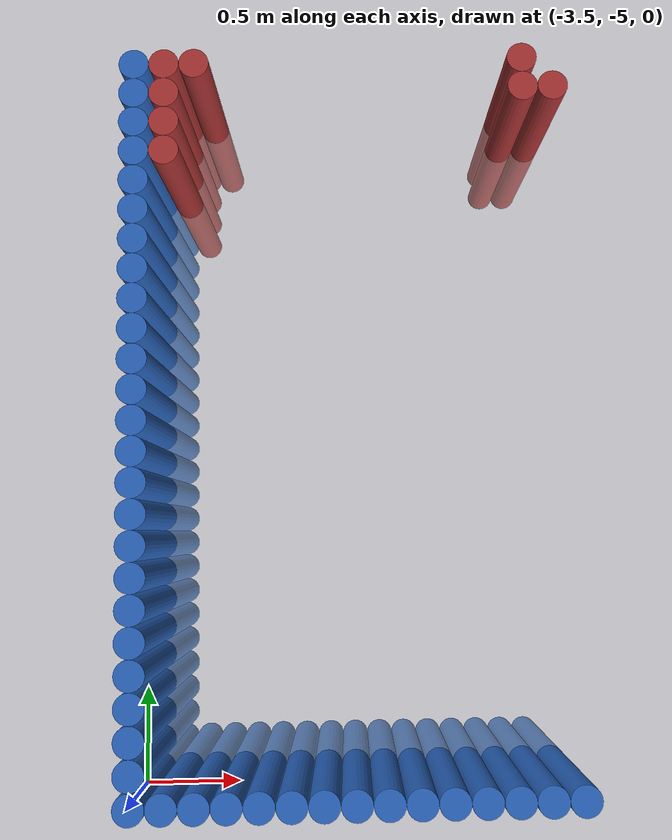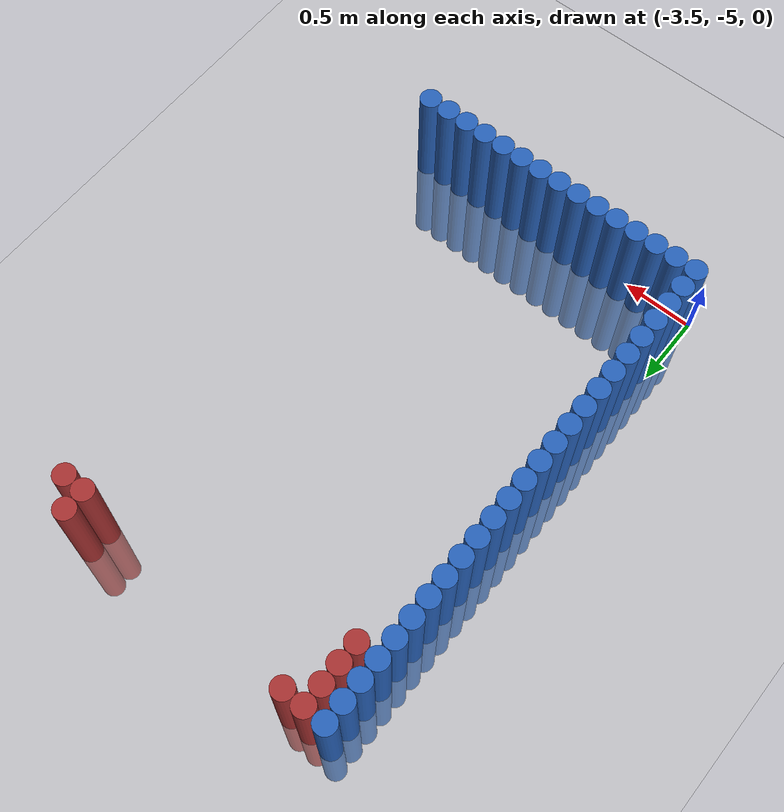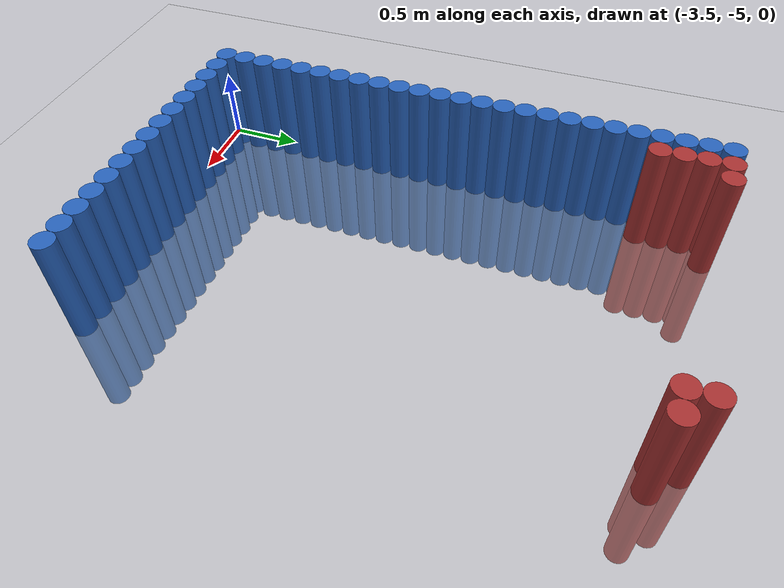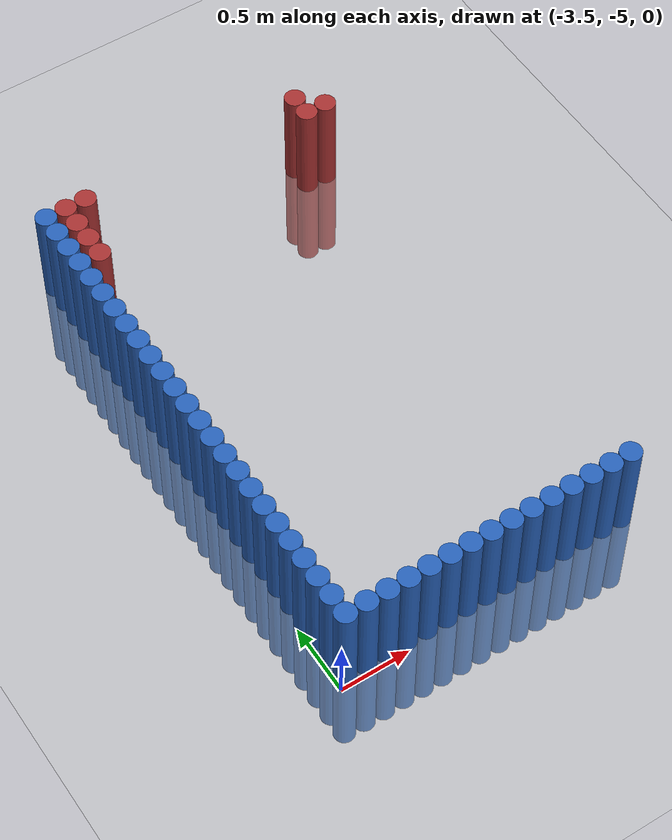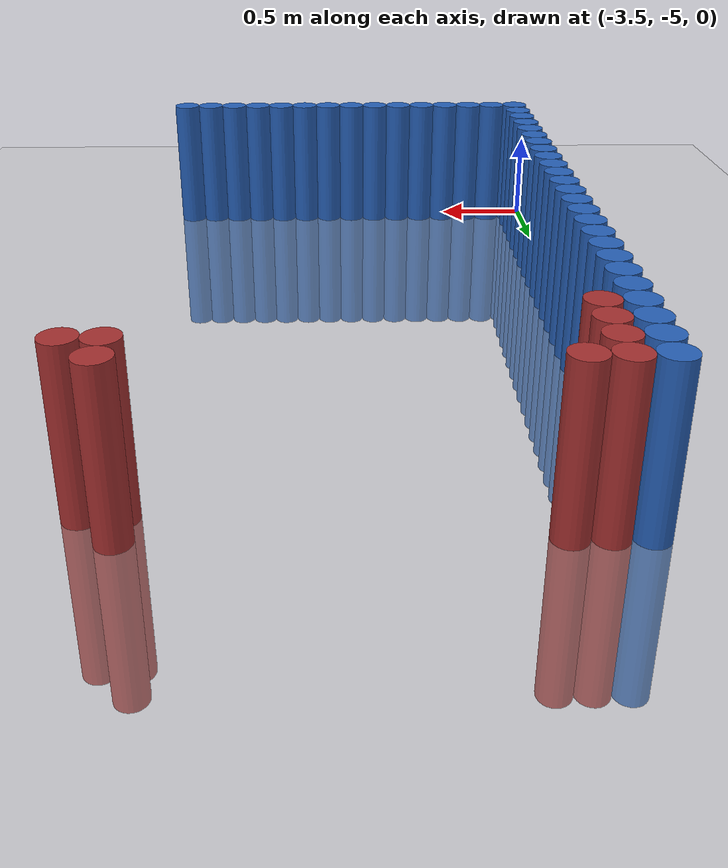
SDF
<sdf version="1.6">
 <world name="default">
  <model name="ground_plane">
   <static>1</static>
   <link name="link">
    <collision name="collision">
     <geometry><plane><normal>0 0 1</normal><size>100 100</size></plane></geometry>
     <surface><friction><ode><mu>100</mu><mu2>50</mu2></ode></friction></surface>
    </collision>
    <visual name="visual">
     <cast_shadows>0</cast_shadows>
     <geometry><plane><normal>0 0 1</normal><size>100 100</size></plane></geometry>
     <material>
      <script><uri>file://media/materials/scripts/gazebo.material</uri><name>Gazebo/Grey</name></script>
     </material>
    </visual>
   </link>
  </model>
  <model name="unit_cylinder_35">
   <static>1</static>
   <pose>-1.325000 -4.925000 0.000000 0.000000 0.000000 0.000000</pose>
   <link name="link">
    <inertial>
     <mass>1</mass>
     <inertia><ixx>0.145833</ixx><ixy>0</ixy><ixz>0</ixz><iyy>0.145833</iyy><iyz>0</iyz><izz>0.125</izz></inertia>
    </inertial>
    <collision name="collision">
     <geometry><cylinder><radius>0.075000</radius><length>1.5</length></cylinder></geometry>
    </collision>
    <visual name="visual">
     <geometry><cylinder><radius>0.075000</radius><length>1.5</length></cylinder></geometry>
     <material>
      <ambient>0.152000 0.379000 0.720000 1</ambient>
      <diffuse>0.152000 0.379000 0.720000 1</diffuse>
     </material>
     <material>
      <script><name>Gazebo/Grey</name><uri>file://media/materials/scripts/gazebo.material</uri></script>
     </material>
    </visual>
   </link>
  </model>
  <model name="unit_cylinder_36">
   <static>1</static>
   <pose>-1.475000 -4.925000 0.000000 0.000000 0.000000 0.000000</pose>
   <link name="link">
    <inertial>
     <mass>1</mass>
     <inertia><ixx>0.145833</ixx><ixy>0</ixy><ixz>0</ixz><iyy>0.145833</iyy><iyz>0</iyz><izz>0.125</izz></inertia>
    </inertial>
    <collision name="collision">
     <geometry><cylinder><radius>0.075000</radius><length>1.5</length></cylinder></geometry>
    </collision>
    <visual name="visual">
     <geometry><cylinder><radius>0.075000</radius><length>1.5</length></cylinder></geometry>
     <material>
      <ambient>0.152000 0.379000 0.720000 1</ambient>
      <diffuse>0.152000 0.379000 0.720000 1</diffuse>
     </material>
     <material>
      <script><name>Gazebo/Grey</name><uri>file://media/materials/scripts/gazebo.material</uri></script>
     </material>
    </visual>
   </link>
  </model>
  <model name="unit_cylinder_37">
   <static>1</static>
   <pose>-1.625000 -4.925000 0.000000 0.000000 0.000000 0.000000</pose>
   <link name="link">
    <inertial>
     <mass>1</mass>
     <inertia><ixx>0.145833</ixx><ixy>0</ixy><ixz>0</ixz><iyy>0.145833</iyy><iyz>0</iyz><izz>0.125</izz></inertia>
    </inertial>
    <collision name="collision">
     <geometry><cylinder><radius>0.075000</radius><length>1.5</length></cylinder></geometry>
    </collision>
    <visual name="visual">
     <geometry><cylinder><radius>0.075000</radius><length>1.5</length></cylinder></geometry>
     <material>
      <ambient>0.152000 0.379000 0.720000 1</ambient>
      <diffuse>0.152000 0.379000 0.720000 1</diffuse>
     </material>
     <material>
      <script><name>Gazebo/Grey</name><uri>file://media/materials/scripts/gazebo.material</uri></script>
     </material>
    </visual>
   </link>
  </model>
  <model name="unit_cylinder_38">
   <static>1</static>
   <pose>-1.775000 -4.925000 0.000000 0.000000 0.000000 0.000000</pose>
   <link name="link">
    <inertial>
     <mass>1</mass>
     <inertia><ixx>0.145833</ixx><ixy>0</ixy><ixz>0</ixz><iyy>0.145833</iyy><iyz>0</iyz><izz>0.125</izz></inertia>
    </inertial>
    <collision name="collision">
     <geometry><cylinder><radius>0.075000</radius><length>1.5</length></cylinder></geometry>
    </collision>
    <visual name="visual">
     <geometry><cylinder><radius>0.075000</radius><length>1.5</length></cylinder></geometry>
     <material>
      <ambient>0.152000 0.379000 0.720000 1</ambient>
      <diffuse>0.152000 0.379000 0.720000 1</diffuse>
     </material>
     <material>
      <script><name>Gazebo/Grey</name><uri>file://media/materials/scripts/gazebo.material</uri></script>
     </material>
    </visual>
   </link>
  </model>
  <model name="unit_cylinder_39">
   <static>1</static>
   <pose>-1.925000 -4.925000 0.000000 0.000000 0.000000 0.000000</pose>
   <link name="link">
    <inertial>
     <mass>1</mass>
     <inertia><ixx>0.145833</ixx><ixy>0</ixy><ixz>0</ixz><iyy>0.145833</iyy><iyz>0</iyz><izz>0.125</izz></inertia>
    </inertial>
    <collision name="collision">
     <geometry><cylinder><radius>0.075000</radius><length>1.5</length></cylinder></geometry>
    </collision>
    <visual name="visual">
     <geometry><cylinder><radius>0.075000</radius><length>1.5</length></cylinder></geometry>
     <material>
      <ambient>0.152000 0.379000 0.720000 1</ambient>
      <diffuse>0.152000 0.379000 0.720000 1</diffuse>
     </material>
     <material>
      <script><name>Gazebo/Grey</name><uri>file://media/materials/scripts/gazebo.material</uri></script>
     </material>
    </visual>
   </link>
  </model>
  <model name="unit_cylinder_40">
   <static>1</static>
   <pose>-2.075000 -4.925000 0.000000 0.000000 0.000000 0.000000</pose>
   <link name="link">
    <inertial>
     <mass>1</mass>
     <inertia><ixx>0.145833</ixx><ixy>0</ixy><ixz>0</ixz><iyy>0.145833</iyy><iyz>0</iyz><izz>0.125</izz></inertia>
    </inertial>
    <collision name="collision">
     <geometry><cylinder><radius>0.075000</radius><length>1.5</length></cylinder></geometry>
    </collision>
    <visual name="visual">
     <geometry><cylinder><radius>0.075000</radius><length>1.5</length></cylinder></geometry>
     <material>
      <ambient>0.152000 0.379000 0.720000 1</ambient>
      <diffuse>0.152000 0.379000 0.720000 1</diffuse>
     </material>
     <material>
      <script><name>Gazebo/Grey</name><uri>file://media/materials/scripts/gazebo.material</uri></script>
     </material>
    </visual>
   </link>
  </model>
  <model name="unit_cylinder_41">
   <static>1</static>
   <pose>-2.225000 -4.925000 0.000000 0.000000 0.000000 0.000000</pose>
   <link name="link">
    <inertial>
     <mass>1</mass>
     <inertia><ixx>0.145833</ixx><ixy>0</ixy><ixz>0</ixz><iyy>0.145833</iyy><iyz>0</iyz><izz>0.125</izz></inertia>
    </inertial>
    <collision name="collision">
     <geometry><cylinder><radius>0.075000</radius><length>1.5</length></cylinder></geometry>
    </collision>
    <visual name="visual">
     <geometry><cylinder><radius>0.075000</radius><length>1.5</length></cylinder></geometry>
     <material>
      <ambient>0.152000 0.379000 0.720000 1</ambient>
      <diffuse>0.152000 0.379000 0.720000 1</diffuse>
     </material>
     <material>
      <script><name>Gazebo/Grey</name><uri>file://media/materials/scripts/gazebo.material</uri></script>
     </material>
    </visual>
   </link>
  </model>
  <model name="unit_cylinder_42">
   <static>1</static>
   <pose>-2.375000 -4.925000 0.000000 0.000000 0.000000 0.000000</pose>
   <link name="link">
    <inertial>
     <mass>1</mass>
     <inertia><ixx>0.145833</ixx><ixy>0</ixy><ixz>0</ixz><iyy>0.145833</iyy><iyz>0</iyz><izz>0.125</izz></inertia>
    </inertial>
    <collision name="collision">
     <geometry><cylinder><radius>0.075000</radius><length>1.5</length></cylinder></geometry>
    </collision>
    <visual name="visual">
     <geometry><cylinder><radius>0.075000</radius><length>1.5</length></cylinder></geometry>
     <material>
      <ambient>0.152000 0.379000 0.720000 1</ambient>
      <diffuse>0.152000 0.379000 0.720000 1</diffuse>
     </material>
     <material>
      <script><name>Gazebo/Grey</name><uri>file://media/materials/scripts/gazebo.material</uri></script>
     </material>
    </visual>
   </link>
  </model>
  <model name="unit_cylinder_43">
   <static>1</static>
   <pose>-2.525000 -4.925000 0.000000 0.000000 0.000000 0.000000</pose>
   <link name="link">
    <inertial>
     <mass>1</mass>
     <inertia><ixx>0.145833</ixx><ixy>0</ixy><ixz>0</ixz><iyy>0.145833</iyy><iyz>0</iyz><izz>0.125</izz></inertia>
    </inertial>
    <collision name="collision">
     <geometry><cylinder><radius>0.075000</radius><length>1.5</length></cylinder></geometry>
    </collision>
    <visual name="visual">
     <geometry><cylinder><radius>0.075000</radius><length>1.5</length></cylinder></geometry>
     <material>
      <ambient>0.152000 0.379000 0.720000 1</ambient>
      <diffuse>0.152000 0.379000 0.720000 1</diffuse>
     </material>
     <material>
      <script><name>Gazebo/Grey</name><uri>file://media/materials/scripts/gazebo.material</uri></script>
     </material>
    </visual>
   </link>
  </model>
  <model name="unit_cylinder_44">
   <static>1</static>
   <pose>-2.675000 -4.925000 0.000000 0.000000 0.000000 0.000000</pose>
   <link name="link">
    <inertial>
     <mass>1</mass>
     <inertia><ixx>0.145833</ixx><ixy>0</ixy><ixz>0</ixz><iyy>0.145833</iyy><iyz>0</iyz><izz>0.125</izz></inertia>
    </inertial>
    <collision name="collision">
     <geometry><cylinder><radius>0.075000</radius><length>1.5</length></cylinder></geometry>
    </collision>
    <visual name="visual">
     <geometry><cylinder><radius>0.075000</radius><length>1.5</length></cylinder></geometry>
     <material>
      <ambient>0.152000 0.379000 0.720000 1</ambient>
      <diffuse>0.152000 0.379000 0.720000 1</diffuse>
     </material>
     <material>
      <script><name>Gazebo/Grey</name><uri>file://media/materials/scripts/gazebo.material</uri></script>
     </material>
    </visual>
   </link>
  </model>
  <model name="unit_cylinder_45">
   <static>1</static>
   <pose>-2.825000 -4.925000 0.000000 0.000000 0.000000 0.000000</pose>
   <link name="link">
    <inertial>
     <mass>1</mass>
     <inertia><ixx>0.145833</ixx><ixy>0</ixy><ixz>0</ixz><iyy>0.145833</iyy><iyz>0</iyz><izz>0.125</izz></inertia>
    </inertial>
    <collision name="collision">
     <geometry><cylinder><radius>0.075000</radius><length>1.5</length></cylinder></geometry>
    </collision>
    <visual name="visual">
     <geometry><cylinder><radius>0.075000</radius><length>1.5</length></cylinder></geometry>
     <material>
      <ambient>0.152000 0.379000 0.720000 1</ambient>
      <diffuse>0.152000 0.379000 0.720000 1</diffuse>
     </material>
     <material>
      <script><name>Gazebo/Grey</name><uri>file://media/materials/scripts/gazebo.material</uri></script>
     </material>
    </visual>
   </link>
  </model>
  <model name="unit_cylinder_46">
   <static>1</static>
   <pose>-2.975000 -4.925000 0.000000 0.000000 0.000000 0.000000</pose>
   <link name="link">
    <inertial>
     <mass>1</mass>
     <inertia><ixx>0.145833</ixx><ixy>0</ixy><ixz>0</ixz><iyy>0.145833</iyy><iyz>0</iyz><izz>0.125</izz></inertia>
    </inertial>
    <collision name="collision">
     <geometry><cylinder><radius>0.075000</radius><length>1.5</length></cylinder></geometry>
    </collision>
    <visual name="visual">
     <geometry><cylinder><radius>0.075000</radius><length>1.5</length></cylinder></geometry>
     <material>
      <ambient>0.152000 0.379000 0.720000 1</ambient>
      <diffuse>0.152000 0.379000 0.720000 1</diffuse>
     </material>
     <material>
      <script><name>Gazebo/Grey</name><uri>file://media/materials/scripts/gazebo.material</uri></script>
     </material>
    </visual>
   </link>
  </model>
  <model name="unit_cylinder_47">
   <static>1</static>
   <pose>-3.125000 -4.925000 0.000000 0.000000 0.000000 0.000000</pose>
   <link name="link">
    <inertial>
     <mass>1</mass>
     <inertia><ixx>0.145833</ixx><ixy>0</ixy><ixz>0</ixz><iyy>0.145833</iyy><iyz>0</iyz><izz>0.125</izz></inertia>
    </inertial>
    <collision name="collision">
     <geometry><cylinder><radius>0.075000</radius><length>1.5</length></cylinder></geometry>
    </collision>
    <visual name="visual">
     <geometry><cylinder><radius>0.075000</radius><length>1.5</length></cylinder></geometry>
     <material>
      <ambient>0.152000 0.379000 0.720000 1</ambient>
      <diffuse>0.152000 0.379000 0.720000 1</diffuse>
     </material>
     <material>
      <script><name>Gazebo/Grey</name><uri>file://media/materials/scripts/gazebo.material</uri></script>
     </material>
    </visual>
   </link>
  </model>
  <model name="unit_cylinder_48">
   <static>1</static>
   <pose>-3.275000 -4.925000 0.000000 0.000000 0.000000 0.000000</pose>
   <link name="link">
    <inertial>
     <mass>1</mass>
     <inertia><ixx>0.145833</ixx><ixy>0</ixy><ixz>0</ixz><iyy>0.145833</iyy><iyz>0</iyz><izz>0.125</izz></inertia>
    </inertial>
    <collision name="collision">
     <geometry><cylinder><radius>0.075000</radius><length>1.5</length></cylinder></geometry>
    </collision>
    <visual name="visual">
     <geometry><cylinder><radius>0.075000</radius><length>1.5</length></cylinder></geometry>
     <material>
      <ambient>0.152000 0.379000 0.720000 1</ambient>
      <diffuse>0.152000 0.379000 0.720000 1</diffuse>
     </material>
     <material>
      <script><name>Gazebo/Grey</name><uri>file://media/materials/scripts/gazebo.material</uri></script>
     </material>
    </visual>
   </link>
  </model>
  <model name="unit_cylinder_49">
   <static>1</static>
   <pose>-3.425000 -4.925000 0.000000 0.000000 0.000000 0.000000</pose>
   <link name="link">
    <inertial>
     <mass>1</mass>
     <inertia><ixx>0.145833</ixx><ixy>0</ixy><ixz>0</ixz><iyy>0.145833</iyy><iyz>0</iyz><izz>0.125</izz></inertia>
    </inertial>
    <collision name="collision">
     <geometry><cylinder><radius>0.075000</radius><length>1.5</length></cylinder></geometry>
    </collision>
    <visual name="visual">
     <geometry><cylinder><radius>0.075000</radius><length>1.5</length></cylinder></geometry>
     <material>
      <ambient>0.152000 0.379000 0.720000 1</ambient>
      <diffuse>0.152000 0.379000 0.720000 1</diffuse>
     </material>
     <material>
      <script><name>Gazebo/Grey</name><uri>file://media/materials/scripts/gazebo.material</uri></script>
     </material>
    </visual>
   </link>
  </model>
  <model name="unit_cylinder_51">
   <static>1</static>
   <pose>-3.425000 -4.775000 0.000000 0.000000 0.000000 0.000000</pose>
   <link name="link">
    <inertial>
     <mass>1</mass>
     <inertia><ixx>0.145833</ixx><ixy>0</ixy><ixz>0</ixz><iyy>0.145833</iyy><iyz>0</iyz><izz>0.125</izz></inertia>
    </inertial>
    <collision name="collision">
     <geometry><cylinder><radius>0.075000</radius><length>1.5</length></cylinder></geometry>
    </collision>
    <visual name="visual">
     <geometry><cylinder><radius>0.075000</radius><length>1.5</length></cylinder></geometry>
     <material>
      <ambient>0.152000 0.379000 0.720000 1</ambient>
      <diffuse>0.152000 0.379000 0.720000 1</diffuse>
     </material>
     <material>
      <script><name>Gazebo/Grey</name><uri>file://media/materials/scripts/gazebo.material</uri></script>
     </material>
    </visual>
   </link>
  </model>
  <model name="unit_cylinder_53">
   <static>1</static>
   <pose>-3.425000 -4.625000 0.000000 0.000000 0.000000 0.000000</pose>
   <link name="link">
    <inertial>
     <mass>1</mass>
     <inertia><ixx>0.145833</ixx><ixy>0</ixy><ixz>0</ixz><iyy>0.145833</iyy><iyz>0</iyz><izz>0.125</izz></inertia>
    </inertial>
    <collision name="collision">
     <geometry><cylinder><radius>0.075000</radius><length>1.5</length></cylinder></geometry>
    </collision>
    <visual name="visual">
     <geometry><cylinder><radius>0.075000</radius><length>1.5</length></cylinder></geometry>
     <material>
      <ambient>0.152000 0.379000 0.720000 1</ambient>
      <diffuse>0.152000 0.379000 0.720000 1</diffuse>
     </material>
     <material>
      <script><name>Gazebo/Grey</name><uri>file://media/materials/scripts/gazebo.material</uri></script>
     </material>
    </visual>
   </link>
  </model>
  <model name="unit_cylinder_55">
   <static>1</static>
   <pose>-3.425000 -4.475000 0.000000 0.000000 0.000000 0.000000</pose>
   <link name="link">
    <inertial>
     <mass>1</mass>
     <inertia><ixx>0.145833</ixx><ixy>0</ixy><ixz>0</ixz><iyy>0.145833</iyy><iyz>0</iyz><izz>0.125</izz></inertia>
    </inertial>
    <collision name="collision">
     <geometry><cylinder><radius>0.075000</radius><length>1.5</length></cylinder></geometry>
    </collision>
    <visual name="visual">
     <geometry><cylinder><radius>0.075000</radius><length>1.5</length></cylinder></geometry>
     <material>
      <ambient>0.152000 0.379000 0.720000 1</ambient>
      <diffuse>0.152000 0.379000 0.720000 1</diffuse>
     </material>
     <material>
      <script><name>Gazebo/Grey</name><uri>file://media/materials/scripts/gazebo.material</uri></script>
     </material>
    </visual>
   </link>
  </model>
  <model name="unit_cylinder_57">
   <static>1</static>
   <pose>-3.425000 -4.325000 0.000000 0.000000 0.000000 0.000000</pose>
   <link name="link">
    <inertial>
     <mass>1</mass>
     <inertia><ixx>0.145833</ixx><ixy>0</ixy><ixz>0</ixz><iyy>0.145833</iyy><iyz>0</iyz><izz>0.125</izz></inertia>
    </inertial>
    <collision name="collision">
     <geometry><cylinder><radius>0.075000</radius><length>1.5</length></cylinder></geometry>
    </collision>
    <visual name="visual">
     <geometry><cylinder><radius>0.075000</radius><length>1.5</length></cylinder></geometry>
     <material>
      <ambient>0.152000 0.379000 0.720000 1</ambient>
      <diffuse>0.152000 0.379000 0.720000 1</diffuse>
     </material>
     <material>
      <script><name>Gazebo/Grey</name><uri>file://media/materials/scripts/gazebo.material</uri></script>
     </material>
    </visual>
   </link>
  </model>
  <model name="unit_cylinder_59">
   <static>1</static>
   <pose>-3.425000 -4.175000 0.000000 0.000000 0.000000 0.000000</pose>
   <link name="link">
    <inertial>
     <mass>1</mass>
     <inertia><ixx>0.145833</ixx><ixy>0</ixy><ixz>0</ixz><iyy>0.145833</iyy><iyz>0</iyz><izz>0.125</izz></inertia>
    </inertial>
    <collision name="collision">
     <geometry><cylinder><radius>0.075000</radius><length>1.5</length></cylinder></geometry>
    </collision>
    <visual name="visual">
     <geometry><cylinder><radius>0.075000</radius><length>1.5</length></cylinder></geometry>
     <material>
      <ambient>0.152000 0.379000 0.720000 1</ambient>
      <diffuse>0.152000 0.379000 0.720000 1</diffuse>
     </material>
     <material>
      <script><name>Gazebo/Grey</name><uri>file://media/materials/scripts/gazebo.material</uri></script>
     </material>
    </visual>
   </link>
  </model>
  <model name="unit_cylinder_61">
   <static>1</static>
   <pose>-3.425000 -4.025000 0.000000 0.000000 0.000000 0.000000</pose>
   <link name="link">
    <inertial>
     <mass>1</mass>
     <inertia><ixx>0.145833</ixx><ixy>0</ixy><ixz>0</ixz><iyy>0.145833</iyy><iyz>0</iyz><izz>0.125</izz></inertia>
    </inertial>
    <collision name="collision">
     <geometry><cylinder><radius>0.075000</radius><length>1.5</length></cylinder></geometry>
    </collision>
    <visual name="visual">
     <geometry><cylinder><radius>0.075000</radius><length>1.5</length></cylinder></geometry>
     <material>
      <ambient>0.152000 0.379000 0.720000 1</ambient>
      <diffuse>0.152000 0.379000 0.720000 1</diffuse>
     </material>
     <material>
      <script><name>Gazebo/Grey</name><uri>file://media/materials/scripts/gazebo.material</uri></script>
     </material>
    </visual>
   </link>
  </model>
  <model name="unit_cylinder_63">
   <static>1</static>
   <pose>-3.425000 -3.875000 0.000000 0.000000 0.000000 0.000000</pose>
   <link name="link">
    <inertial>
     <mass>1</mass>
     <inertia><ixx>0.145833</ixx><ixy>0</ixy><ixz>0</ixz><iyy>0.145833</iyy><iyz>0</iyz><izz>0.125</izz></inertia>
    </inertial>
    <collision name="collision">
     <geometry><cylinder><radius>0.075000</radius><length>1.5</length></cylinder></geometry>
    </collision>
    <visual name="visual">
     <geometry><cylinder><radius>0.075000</radius><length>1.5</length></cylinder></geometry>
     <material>
      <ambient>0.152000 0.379000 0.720000 1</ambient>
      <diffuse>0.152000 0.379000 0.720000 1</diffuse>
     </material>
     <material>
      <script><name>Gazebo/Grey</name><uri>file://media/materials/scripts/gazebo.material</uri></script>
     </material>
    </visual>
   </link>
  </model>
  <model name="unit_cylinder_65">
   <static>1</static>
   <pose>-3.425000 -3.725000 0.000000 0.000000 0.000000 0.000000</pose>
   <link name="link">
    <inertial>
     <mass>1</mass>
     <inertia><ixx>0.145833</ixx><ixy>0</ixy><ixz>0</ixz><iyy>0.145833</iyy><iyz>0</iyz><izz>0.125</izz></inertia>
    </inertial>
    <collision name="collision">
     <geometry><cylinder><radius>0.075000</radius><length>1.5</length></cylinder></geometry>
    </collision>
    <visual name="visual">
     <geometry><cylinder><radius>0.075000</radius><length>1.5</length></cylinder></geometry>
     <material>
      <ambient>0.152000 0.379000 0.720000 1</ambient>
      <diffuse>0.152000 0.379000 0.720000 1</diffuse>
     </material>
     <material>
      <script><name>Gazebo/Grey</name><uri>file://media/materials/scripts/gazebo.material</uri></script>
     </material>
    </visual>
   </link>
  </model>
  <model name="unit_cylinder_67">
   <static>1</static>
   <pose>-3.425000 -3.575000 0.000000 0.000000 0.000000 0.000000</pose>
   <link name="link">
    <inertial>
     <mass>1</mass>
     <inertia><ixx>0.145833</ixx><ixy>0</ixy><ixz>0</ixz><iyy>0.145833</iyy><iyz>0</iyz><izz>0.125</izz></inertia>
    </inertial>
    <collision name="collision">
     <geometry><cylinder><radius>0.075000</radius><length>1.5</length></cylinder></geometry>
    </collision>
    <visual name="visual">
     <geometry><cylinder><radius>0.075000</radius><length>1.5</length></cylinder></geometry>
     <material>
      <ambient>0.152000 0.379000 0.720000 1</ambient>
      <diffuse>0.152000 0.379000 0.720000 1</diffuse>
     </material>
     <material>
      <script><name>Gazebo/Grey</name><uri>file://media/materials/scripts/gazebo.material</uri></script>
     </material>
    </visual>
   </link>
  </model>
  <model name="unit_cylinder_69">
   <static>1</static>
   <pose>-3.425000 -3.425000 0.000000 0.000000 0.000000 0.000000</pose>
   <link name="link">
    <inertial>
     <mass>1</mass>
     <inertia><ixx>0.145833</ixx><ixy>0</ixy><ixz>0</ixz><iyy>0.145833</iyy><iyz>0</iyz><izz>0.125</izz></inertia>
    </inertial>
    <collision name="collision">
     <geometry><cylinder><radius>0.075000</radius><length>1.5</length></cylinder></geometry>
    </collision>
    <visual name="visual">
     <geometry><cylinder><radius>0.075000</radius><length>1.5</length></cylinder></geometry>
     <material>
      <ambient>0.152000 0.379000 0.720000 1</ambient>
      <diffuse>0.152000 0.379000 0.720000 1</diffuse>
     </material>
     <material>
      <script><name>Gazebo/Grey</name><uri>file://media/materials/scripts/gazebo.material</uri></script>
     </material>
    </visual>
   </link>
  </model>
  <model name="unit_cylinder_71">
   <static>1</static>
   <pose>-3.425000 -3.275000 0.000000 0.000000 0.000000 0.000000</pose>
   <link name="link">
    <inertial>
     <mass>1</mass>
     <inertia><ixx>0.145833</ixx><ixy>0</ixy><ixz>0</ixz><iyy>0.145833</iyy><iyz>0</iyz><izz>0.125</izz></inertia>
    </inertial>
    <collision name="collision">
     <geometry><cylinder><radius>0.075000</radius><length>1.5</length></cylinder></geometry>
    </collision>
    <visual name="visual">
     <geometry><cylinder><radius>0.075000</radius><length>1.5</length></cylinder></geometry>
     <material>
      <ambient>0.152000 0.379000 0.720000 1</ambient>
      <diffuse>0.152000 0.379000 0.720000 1</diffuse>
     </material>
     <material>
      <script><name>Gazebo/Grey</name><uri>file://media/materials/scripts/gazebo.material</uri></script>
     </material>
    </visual>
   </link>
  </model>
  <model name="unit_cylinder_73">
   <static>1</static>
   <pose>-3.425000 -3.125000 0.000000 0.000000 0.000000 0.000000</pose>
   <link name="link">
    <inertial>
     <mass>1</mass>
     <inertia><ixx>0.145833</ixx><ixy>0</ixy><ixz>0</ixz><iyy>0.145833</iyy><iyz>0</iyz><izz>0.125</izz></inertia>
    </inertial>
    <collision name="collision">
     <geometry><cylinder><radius>0.075000</radius><length>1.5</length></cylinder></geometry>
    </collision>
    <visual name="visual">
     <geometry><cylinder><radius>0.075000</radius><length>1.5</length></cylinder></geometry>
     <material>
      <ambient>0.152000 0.379000 0.720000 1</ambient>
      <diffuse>0.152000 0.379000 0.720000 1</diffuse>
     </material>
     <material>
      <script><name>Gazebo/Grey</name><uri>file://media/materials/scripts/gazebo.material</uri></script>
     </material>
    </visual>
   </link>
  </model>
  <model name="unit_cylinder_75">
   <static>1</static>
   <pose>-3.425000 -2.975000 0.000000 0.000000 0.000000 0.000000</pose>
   <link name="link">
    <inertial>
     <mass>1</mass>
     <inertia><ixx>0.145833</ixx><ixy>0</ixy><ixz>0</ixz><iyy>0.145833</iyy><iyz>0</iyz><izz>0.125</izz></inertia>
    </inertial>
    <collision name="collision">
     <geometry><cylinder><radius>0.075000</radius><length>1.5</length></cylinder></geometry>
    </collision>
    <visual name="visual">
     <geometry><cylinder><radius>0.075000</radius><length>1.5</length></cylinder></geometry>
     <material>
      <ambient>0.152000 0.379000 0.720000 1</ambient>
      <diffuse>0.152000 0.379000 0.720000 1</diffuse>
     </material>
     <material>
      <script><name>Gazebo/Grey</name><uri>file://media/materials/scripts/gazebo.material</uri></script>
     </material>
    </visual>
   </link>
  </model>
  <model name="unit_cylinder_77">
   <static>1</static>
   <pose>-3.425000 -2.825000 0.000000 0.000000 0.000000 0.000000</pose>
   <link name="link">
    <inertial>
     <mass>1</mass>
     <inertia><ixx>0.145833</ixx><ixy>0</ixy><ixz>0</ixz><iyy>0.145833</iyy><iyz>0</iyz><izz>0.125</izz></inertia>
    </inertial>
    <collision name="collision">
     <geometry><cylinder><radius>0.075000</radius><length>1.5</length></cylinder></geometry>
    </collision>
    <visual name="visual">
     <geometry><cylinder><radius>0.075000</radius><length>1.5</length></cylinder></geometry>
     <material>
      <ambient>0.152000 0.379000 0.720000 1</ambient>
      <diffuse>0.152000 0.379000 0.720000 1</diffuse>
     </material>
     <material>
      <script><name>Gazebo/Grey</name><uri>file://media/materials/scripts/gazebo.material</uri></script>
     </material>
    </visual>
   </link>
  </model>
  <model name="unit_cylinder_79">
   <static>1</static>
   <pose>-3.425000 -2.675000 0.000000 0.000000 0.000000 0.000000</pose>
   <link name="link">
    <inertial>
     <mass>1</mass>
     <inertia><ixx>0.145833</ixx><ixy>0</ixy><ixz>0</ixz><iyy>0.145833</iyy><iyz>0</iyz><izz>0.125</izz></inertia>
    </inertial>
    <collision name="collision">
     <geometry><cylinder><radius>0.075000</radius><length>1.5</length></cylinder></geometry>
    </collision>
    <visual name="visual">
     <geometry><cylinder><radius>0.075000</radius><length>1.5</length></cylinder></geometry>
     <material>
      <ambient>0.152000 0.379000 0.720000 1</ambient>
      <diffuse>0.152000 0.379000 0.720000 1</diffuse>
     </material>
     <material>
      <script><name>Gazebo/Grey</name><uri>file://media/materials/scripts/gazebo.material</uri></script>
     </material>
    </visual>
   </link>
  </model>
  <model name="unit_cylinder_81">
   <static>1</static>
   <pose>-3.425000 -2.525000 0.000000 0.000000 0.000000 0.000000</pose>
   <link name="link">
    <inertial>
     <mass>1</mass>
     <inertia><ixx>0.145833</ixx><ixy>0</ixy><ixz>0</ixz><iyy>0.145833</iyy><iyz>0</iyz><izz>0.125</izz></inertia>
    </inertial>
    <collision name="collision">
     <geometry><cylinder><radius>0.075000</radius><length>1.5</length></cylinder></geometry>
    </collision>
    <visual name="visual">
     <geometry><cylinder><radius>0.075000</radius><length>1.5</length></cylinder></geometry>
     <material>
      <ambient>0.152000 0.379000 0.720000 1</ambient>
      <diffuse>0.152000 0.379000 0.720000 1</diffuse>
     </material>
     <material>
      <script><name>Gazebo/Grey</name><uri>file://media/materials/scripts/gazebo.material</uri></script>
     </material>
    </visual>
   </link>
  </model>
  <model name="unit_cylinder_83">
   <static>1</static>
   <pose>-3.425000 -2.375000 0.000000 0.000000 0.000000 0.000000</pose>
   <link name="link">
    <inertial>
     <mass>1</mass>
     <inertia><ixx>0.145833</ixx><ixy>0</ixy><ixz>0</ixz><iyy>0.145833</iyy><iyz>0</iyz><izz>0.125</izz></inertia>
    </inertial>
    <collision name="collision">
     <geometry><cylinder><radius>0.075000</radius><length>1.5</length></cylinder></geometry>
    </collision>
    <visual name="visual">
     <geometry><cylinder><radius>0.075000</radius><length>1.5</length></cylinder></geometry>
     <material>
      <ambient>0.152000 0.379000 0.720000 1</ambient>
      <diffuse>0.152000 0.379000 0.720000 1</diffuse>
     </material>
     <material>
      <script><name>Gazebo/Grey</name><uri>file://media/materials/scripts/gazebo.material</uri></script>
     </material>
    </visual>
   </link>
  </model>
  <model name="unit_cylinder_85">
   <static>1</static>
   <pose>-3.425000 -2.225000 0.000000 0.000000 0.000000 0.000000</pose>
   <link name="link">
    <inertial>
     <mass>1</mass>
     <inertia><ixx>0.145833</ixx><ixy>0</ixy><ixz>0</ixz><iyy>0.145833</iyy><iyz>0</iyz><izz>0.125</izz></inertia>
    </inertial>
    <collision name="collision">
     <geometry><cylinder><radius>0.075000</radius><length>1.5</length></cylinder></geometry>
    </collision>
    <visual name="visual">
     <geometry><cylinder><radius>0.075000</radius><length>1.5</length></cylinder></geometry>
     <material>
      <ambient>0.152000 0.379000 0.720000 1</ambient>
      <diffuse>0.152000 0.379000 0.720000 1</diffuse>
     </material>
     <material>
      <script><name>Gazebo/Grey</name><uri>file://media/materials/scripts/gazebo.material</uri></script>
     </material>
    </visual>
   </link>
  </model>
  <model name="unit_cylinder_87">
   <static>1</static>
   <pose>-3.425000 -2.075000 0.000000 0.000000 0.000000 0.000000</pose>
   <link name="link">
    <inertial>
     <mass>1</mass>
     <inertia><ixx>0.145833</ixx><ixy>0</ixy><ixz>0</ixz><iyy>0.145833</iyy><iyz>0</iyz><izz>0.125</izz></inertia>
    </inertial>
    <collision name="collision">
     <geometry><cylinder><radius>0.075000</radius><length>1.5</length></cylinder></geometry>
    </collision>
    <visual name="visual">
     <geometry><cylinder><radius>0.075000</radius><length>1.5</length></cylinder></geometry>
     <material>
      <ambient>0.152000 0.379000 0.720000 1</ambient>
      <diffuse>0.152000 0.379000 0.720000 1</diffuse>
     </material>
     <material>
      <script><name>Gazebo/Grey</name><uri>file://media/materials/scripts/gazebo.material</uri></script>
     </material>
    </visual>
   </link>
  </model>
  <model name="unit_cylinder_89">
   <static>1</static>
   <pose>-3.425000 -1.925000 0.000000 0.000000 0.000000 0.000000</pose>
   <link name="link">
    <inertial>
     <mass>1</mass>
     <inertia><ixx>0.145833</ixx><ixy>0</ixy><ixz>0</ixz><iyy>0.145833</iyy><iyz>0</iyz><izz>0.125</izz></inertia>
    </inertial>
    <collision name="collision">
     <geometry><cylinder><radius>0.075000</radius><length>1.5</length></cylinder></geometry>
    </collision>
    <visual name="visual">
     <geometry><cylinder><radius>0.075000</radius><length>1.5</length></cylinder></geometry>
     <material>
      <ambient>0.152000 0.379000 0.720000 1</ambient>
      <diffuse>0.152000 0.379000 0.720000 1</diffuse>
     </material>
     <material>
      <script><name>Gazebo/Grey</name><uri>file://media/materials/scripts/gazebo.material</uri></script>
     </material>
    </visual>
   </link>
  </model>
  <model name="unit_cylinder_91">
   <static>1</static>
   <pose>-3.425000 -1.775000 0.000000 0.000000 0.000000 0.000000</pose>
   <link name="link">
    <inertial>
     <mass>1</mass>
     <inertia><ixx>0.145833</ixx><ixy>0</ixy><ixz>0</ixz><iyy>0.145833</iyy><iyz>0</iyz><izz>0.125</izz></inertia>
    </inertial>
    <collision name="collision">
     <geometry><cylinder><radius>0.075000</radius><length>1.5</length></cylinder></geometry>
    </collision>
    <visual name="visual">
     <geometry><cylinder><radius>0.075000</radius><length>1.5</length></cylinder></geometry>
     <material>
      <ambient>0.152000 0.379000 0.720000 1</ambient>
      <diffuse>0.152000 0.379000 0.720000 1</diffuse>
     </material>
     <material>
      <script><name>Gazebo/Grey</name><uri>file://media/materials/scripts/gazebo.material</uri></script>
     </material>
    </visual>
   </link>
  </model>
  <model name="unit_cylinder_93">
   <static>1</static>
   <pose>-3.425000 -1.625000 0.000000 0.000000 0.000000 0.000000</pose>
   <link name="link">
    <inertial>
     <mass>1</mass>
     <inertia><ixx>0.145833</ixx><ixy>0</ixy><ixz>0</ixz><iyy>0.145833</iyy><iyz>0</iyz><izz>0.125</izz></inertia>
    </inertial>
    <collision name="collision">
     <geometry><cylinder><radius>0.075000</radius><length>1.5</length></cylinder></geometry>
    </collision>
    <visual name="visual">
     <geometry><cylinder><radius>0.075000</radius><length>1.5</length></cylinder></geometry>
     <material>
      <ambient>0.152000 0.379000 0.720000 1</ambient>
      <diffuse>0.152000 0.379000 0.720000 1</diffuse>
     </material>
     <material>
      <script><name>Gazebo/Grey</name><uri>file://media/materials/scripts/gazebo.material</uri></script>
     </material>
    </visual>
   </link>
  </model>
  <model name="unit_cylinder_95">
   <static>1</static>
   <pose>-3.425000 -1.475000 0.000000 0.000000 0.000000 0.000000</pose>
   <link name="link">
    <inertial>
     <mass>1</mass>
     <inertia><ixx>0.145833</ixx><ixy>0</ixy><ixz>0</ixz><iyy>0.145833</iyy><iyz>0</iyz><izz>0.125</izz></inertia>
    </inertial>
    <collision name="collision">
     <geometry><cylinder><radius>0.075000</radius><length>1.5</length></cylinder></geometry>
    </collision>
    <visual name="visual">
     <geometry><cylinder><radius>0.075000</radius><length>1.5</length></cylinder></geometry>
     <material>
      <ambient>0.152000 0.379000 0.720000 1</ambient>
      <diffuse>0.152000 0.379000 0.720000 1</diffuse>
     </material>
     <material>
      <script><name>Gazebo/Grey</name><uri>file://media/materials/scripts/gazebo.material</uri></script>
     </material>
    </visual>
   </link>
  </model>
  <model name="unit_cylinder_97">
   <static>1</static>
   <pose>-3.425000 -1.325000 0.000000 0.000000 0.000000 0.000000</pose>
   <link name="link">
    <inertial>
     <mass>1</mass>
     <inertia><ixx>0.145833</ixx><ixy>0</ixy><ixz>0</ixz><iyy>0.145833</iyy><iyz>0</iyz><izz>0.125</izz></inertia>
    </inertial>
    <collision name="collision">
     <geometry><cylinder><radius>0.075000</radius><length>1.5</length></cylinder></geometry>
    </collision>
    <visual name="visual">
     <geometry><cylinder><radius>0.075000</radius><length>1.5</length></cylinder></geometry>
     <material>
      <ambient>0.152000 0.379000 0.720000 1</ambient>
      <diffuse>0.152000 0.379000 0.720000 1</diffuse>
     </material>
     <material>
      <script><name>Gazebo/Grey</name><uri>file://media/materials/scripts/gazebo.material</uri></script>
     </material>
    </visual>
   </link>
  </model>
  <model name="unit_cylinder_208">
   <static>1</static>
   <pose>-3.425000 -1.925000 0.000000 0.000000 0.000000 0.000000</pose>
   <link name="link">
    <inertial>
     <mass>1</mass>
     <inertia><ixx>0.145833</ixx><ixy>0</ixy><ixz>0</ixz><iyy>0.145833</iyy><iyz>0</iyz><izz>0.125</izz></inertia>
    </inertial>
    <collision name="collision">
     <geometry><cylinder><radius>0.075000</radius><length>1.5</length></cylinder></geometry>
    </collision>
    <visual name="visual">
     <geometry><cylinder><radius>0.075000</radius><length>1.5</length></cylinder></geometry>
     <material>
      <ambient>0.152000 0.379000 0.720000 1</ambient>
      <diffuse>0.152000 0.379000 0.720000 1</diffuse>
     </material>
     <material>
      <script><name>Gazebo/Grey</name><uri>file://media/materials/scripts/gazebo.material</uri></script>
     </material>
    </visual>
   </link>
  </model>
  <model name="unit_cylinder_209">
   <static>1</static>
   <pose>-3.425000 -1.775000 0.000000 0.000000 0.000000 0.000000</pose>
   <link name="link">
    <inertial>
     <mass>1</mass>
     <inertia><ixx>0.145833</ixx><ixy>0</ixy><ixz>0</ixz><iyy>0.145833</iyy><iyz>0</iyz><izz>0.125</izz></inertia>
    </inertial>
    <collision name="collision">
     <geometry><cylinder><radius>0.075000</radius><length>1.5</length></cylinder></geometry>
    </collision>
    <visual name="visual">
     <geometry><cylinder><radius>0.075000</radius><length>1.5</length></cylinder></geometry>
     <material>
      <ambient>0.152000 0.379000 0.720000 1</ambient>
      <diffuse>0.152000 0.379000 0.720000 1</diffuse>
     </material>
     <material>
      <script><name>Gazebo/Grey</name><uri>file://media/materials/scripts/gazebo.material</uri></script>
     </material>
    </visual>
   </link>
  </model>
  <model name="unit_cylinder_210">
   <static>1</static>
   <pose>-3.425000 -1.625000 0.000000 0.000000 0.000000 0.000000</pose>
   <link name="link">
    <inertial>
     <mass>1</mass>
     <inertia><ixx>0.145833</ixx><ixy>0</ixy><ixz>0</ixz><iyy>0.145833</iyy><iyz>0</iyz><izz>0.125</izz></inertia>
    </inertial>
    <collision name="collision">
     <geometry><cylinder><radius>0.075000</radius><length>1.5</length></cylinder></geometry>
    </collision>
    <visual name="visual">
     <geometry><cylinder><radius>0.075000</radius><length>1.5</length></cylinder></geometry>
     <material>
      <ambient>0.152000 0.379000 0.720000 1</ambient>
      <diffuse>0.152000 0.379000 0.720000 1</diffuse>
     </material>
     <material>
      <script><name>Gazebo/Grey</name><uri>file://media/materials/scripts/gazebo.material</uri></script>
     </material>
    </visual>
   </link>
  </model>
  <model name="unit_cylinder_211">
   <static>1</static>
   <pose>-3.425000 -1.475000 0.000000 0.000000 0.000000 0.000000</pose>
   <link name="link">
    <inertial>
     <mass>1</mass>
     <inertia><ixx>0.145833</ixx><ixy>0</ixy><ixz>0</ixz><iyy>0.145833</iyy><iyz>0</iyz><izz>0.125</izz></inertia>
    </inertial>
    <collision name="collision">
     <geometry><cylinder><radius>0.075000</radius><length>1.5</length></cylinder></geometry>
    </collision>
    <visual name="visual">
     <geometry><cylinder><radius>0.075000</radius><length>1.5</length></cylinder></geometry>
     <material>
      <ambient>0.152000 0.379000 0.720000 1</ambient>
      <diffuse>0.152000 0.379000 0.720000 1</diffuse>
     </material>
     <material>
      <script><name>Gazebo/Grey</name><uri>file://media/materials/scripts/gazebo.material</uri></script>
     </material>
    </visual>
   </link>
  </model>
  <model name="unit_cylinder_212">
   <static>1</static>
   <pose>-3.425000 -1.325000 0.000000 0.000000 0.000000 0.000000</pose>
   <link name="link">
    <inertial>
     <mass>1</mass>
     <inertia><ixx>0.145833</ixx><ixy>0</ixy><ixz>0</ixz><iyy>0.145833</iyy><iyz>0</iyz><izz>0.125</izz></inertia>
    </inertial>
    <collision name="collision">
     <geometry><cylinder><radius>0.075000</radius><length>1.5</length></cylinder></geometry>
    </collision>
    <visual name="visual">
     <geometry><cylinder><radius>0.075000</radius><length>1.5</length></cylinder></geometry>
     <material>
      <ambient>0.152000 0.379000 0.720000 1</ambient>
      <diffuse>0.152000 0.379000 0.720000 1</diffuse>
     </material>
     <material>
      <script><name>Gazebo/Grey</name><uri>file://media/materials/scripts/gazebo.material</uri></script>
     </material>
    </visual>
   </link>
  </model>
  <model name="unit_cylinder_258">
   <static>1</static>
   <pose>-3.275000 -1.775000 0.000000 0.000000 0.000000 0.000000</pose>
   <link name="link">
    <inertial>
     <mass>1</mass>
     <inertia><ixx>0.145833</ixx><ixy>0</ixy><ixz>0</ixz><iyy>0.145833</iyy><iyz>0</iyz><izz>0.125</izz></inertia>
    </inertial>
    <collision name="collision">
     <geometry><cylinder><radius>0.075000</radius><length>1.5</length></cylinder></geometry>
    </collision>
    <visual name="visual">
     <geometry><cylinder><radius>0.075000</radius><length>1.5</length></cylinder></geometry>
     <material>
      <ambient>0.648000 0.192000 0.192000 1</ambient>
      <diffuse>0.648000 0.192000 0.192000 1</diffuse>
     </material>
     <material>
      <script><name>Gazebo/Grey</name><uri>file://media/materials/scripts/gazebo.material</uri></script>
     </material>
    </visual>
   </link>
  </model>
  <model name="unit_cylinder_259">
   <static>1</static>
   <pose>-3.275000 -1.625000 0.000000 0.000000 0.000000 0.000000</pose>
   <link name="link">
    <inertial>
     <mass>1</mass>
     <inertia><ixx>0.145833</ixx><ixy>0</ixy><ixz>0</ixz><iyy>0.145833</iyy><iyz>0</iyz><izz>0.125</izz></inertia>
    </inertial>
    <collision name="collision">
     <geometry><cylinder><radius>0.075000</radius><length>1.5</length></cylinder></geometry>
    </collision>
    <visual name="visual">
     <geometry><cylinder><radius>0.075000</radius><length>1.5</length></cylinder></geometry>
     <material>
      <ambient>0.648000 0.192000 0.192000 1</ambient>
      <diffuse>0.648000 0.192000 0.192000 1</diffuse>
     </material>
     <material>
      <script><name>Gazebo/Grey</name><uri>file://media/materials/scripts/gazebo.material</uri></script>
     </material>
    </visual>
   </link>
  </model>
  <model name="unit_cylinder_260">
   <static>1</static>
   <pose>-3.275000 -1.475000 0.000000 0.000000 0.000000 0.000000</pose>
   <link name="link">
    <inertial>
     <mass>1</mass>
     <inertia><ixx>0.145833</ixx><ixy>0</ixy><ixz>0</ixz><iyy>0.145833</iyy><iyz>0</iyz><izz>0.125</izz></inertia>
    </inertial>
    <collision name="collision">
     <geometry><cylinder><radius>0.075000</radius><length>1.5</length></cylinder></geometry>
    </collision>
    <visual name="visual">
     <geometry><cylinder><radius>0.075000</radius><length>1.5</length></cylinder></geometry>
     <material>
      <ambient>0.648000 0.192000 0.192000 1</ambient>
      <diffuse>0.648000 0.192000 0.192000 1</diffuse>
     </material>
     <material>
      <script><name>Gazebo/Grey</name><uri>file://media/materials/scripts/gazebo.material</uri></script>
     </material>
    </visual>
   </link>
  </model>
  <model name="unit_cylinder_261">
   <static>1</static>
   <pose>-3.275000 -1.325000 0.000000 0.000000 0.000000 0.000000</pose>
   <link name="link">
    <inertial>
     <mass>1</mass>
     <inertia><ixx>0.145833</ixx><ixy>0</ixy><ixz>0</ixz><iyy>0.145833</iyy><iyz>0</iyz><izz>0.125</izz></inertia>
    </inertial>
    <collision name="collision">
     <geometry><cylinder><radius>0.075000</radius><length>1.5</length></cylinder></geometry>
    </collision>
    <visual name="visual">
     <geometry><cylinder><radius>0.075000</radius><length>1.5</length></cylinder></geometry>
     <material>
      <ambient>0.648000 0.192000 0.192000 1</ambient>
      <diffuse>0.648000 0.192000 0.192000 1</diffuse>
     </material>
     <material>
      <script><name>Gazebo/Grey</name><uri>file://media/materials/scripts/gazebo.material</uri></script>
     </material>
    </visual>
   </link>
  </model>
  <model name="unit_cylinder_278">
   <static>1</static>
   <pose>-3.125000 -1.325000 0.000000 0.000000 0.000000 0.000000</pose>
   <link name="link">
    <inertial>
     <mass>1</mass>
     <inertia><ixx>0.145833</ixx><ixy>0</ixy><ixz>0</ixz><iyy>0.145833</iyy><iyz>0</iyz><izz>0.125</izz></inertia>
    </inertial>
    <collision name="collision">
     <geometry><cylinder><radius>0.075000</radius><length>1.5</length></cylinder></geometry>
    </collision>
    <visual name="visual">
     <geometry><cylinder><radius>0.075000</radius><length>1.5</length></cylinder></geometry>
     <material>
      <ambient>0.648000 0.192000 0.192000 1</ambient>
      <diffuse>0.648000 0.192000 0.192000 1</diffuse>
     </material>
     <material>
      <script><name>Gazebo/Grey</name><uri>file://media/materials/scripts/gazebo.material</uri></script>
     </material>
    </visual>
   </link>
  </model>
  <model name="unit_cylinder_401">
   <static>1</static>
   <pose>-1.475000 -1.475000 0.000000 0.000000 0.000000 0.000000</pose>
   <link name="link">
    <inertial>
     <mass>1</mass>
     <inertia><ixx>0.145833</ixx><ixy>0</ixy><ixz>0</ixz><iyy>0.145833</iyy><iyz>0</iyz><izz>0.125</izz></inertia>
    </inertial>
    <collision name="collision">
     <geometry><cylinder><radius>0.075000</radius><length>1.5</length></cylinder></geometry>
    </collision>
    <visual name="visual">
     <geometry><cylinder><radius>0.075000</radius><length>1.5</length></cylinder></geometry>
     <material>
      <ambient>0.648000 0.192000 0.192000 1</ambient>
      <diffuse>0.648000 0.192000 0.192000 1</diffuse>
     </material>
     <material>
      <script><name>Gazebo/Grey</name><uri>file://media/materials/scripts/gazebo.material</uri></script>
     </material>
    </visual>
   </link>
  </model>
  <model name="unit_cylinder_402">
   <static>1</static>
   <pose>-1.475000 -1.325000 0.000000 0.000000 0.000000 0.000000</pose>
   <link name="link">
    <inertial>
     <mass>1</mass>
     <inertia><ixx>0.145833</ixx><ixy>0</ixy><ixz>0</ixz><iyy>0.145833</iyy><iyz>0</iyz><izz>0.125</izz></inertia>
    </inertial>
    <collision name="collision">
     <geometry><cylinder><radius>0.075000</radius><length>1.5</length></cylinder></geometry>
    </collision>
    <visual name="visual">
     <geometry><cylinder><radius>0.075000</radius><length>1.5</length></cylinder></geometry>
     <material>
      <ambient>0.648000 0.192000 0.192000 1</ambient>
      <diffuse>0.648000 0.192000 0.192000 1</diffuse>
     </material>
     <material>
      <script><name>Gazebo/Grey</name><uri>file://media/materials/scripts/gazebo.material</uri></script>
     </material>
    </visual>
   </link>
  </model>
  <model name="unit_cylinder_411">
   <static>1</static>
   <pose>-1.325000 -1.475000 0.000000 0.000000 0.000000 0.000000</pose>
   <link name="link">
    <inertial>
     <mass>1</mass>
     <inertia><ixx>0.145833</ixx><ixy>0</ixy><ixz>0</ixz><iyy>0.145833</iyy><iyz>0</iyz><izz>0.125</izz></inertia>
    </inertial>
    <collision name="collision">
     <geometry><cylinder><radius>0.075000</radius><length>1.5</length></cylinder></geometry>
    </collision>
    <visual name="visual">
     <geometry><cylinder><radius>0.075000</radius><length>1.5</length></cylinder></geometry>
     <material>
      <ambient>0.648000 0.192000 0.192000 1</ambient>
      <diffuse>0.648000 0.192000 0.192000 1</diffuse>
     </material>
     <material>
      <script><name>Gazebo/Grey</name><uri>file://media/materials/scripts/gazebo.material</uri></script>
     </material>
    </visual>
   </link>
  </model>
 </world>
</sdf>
